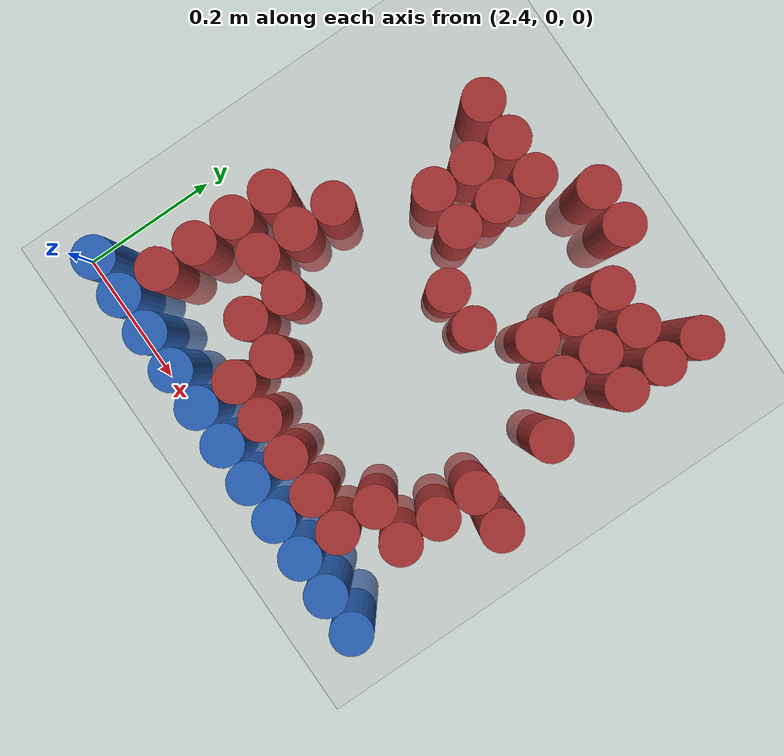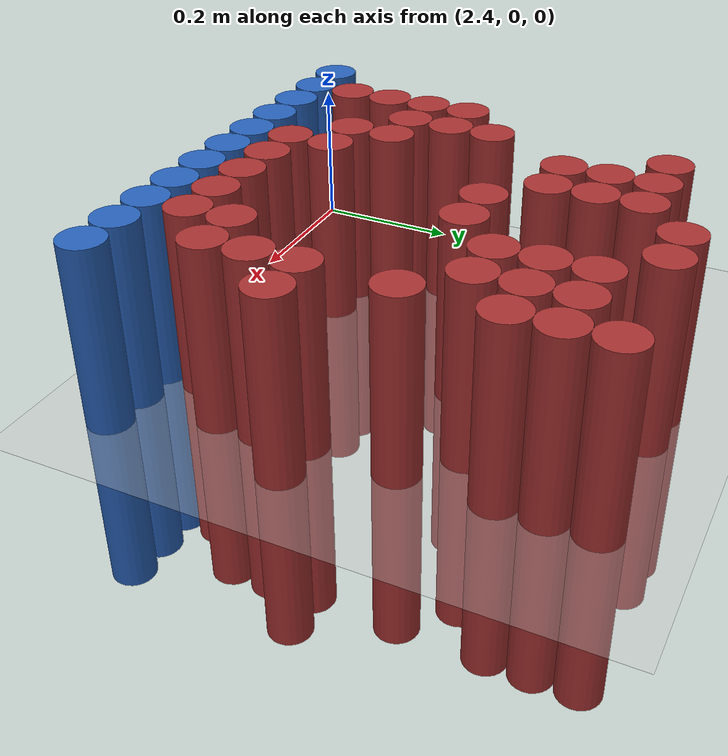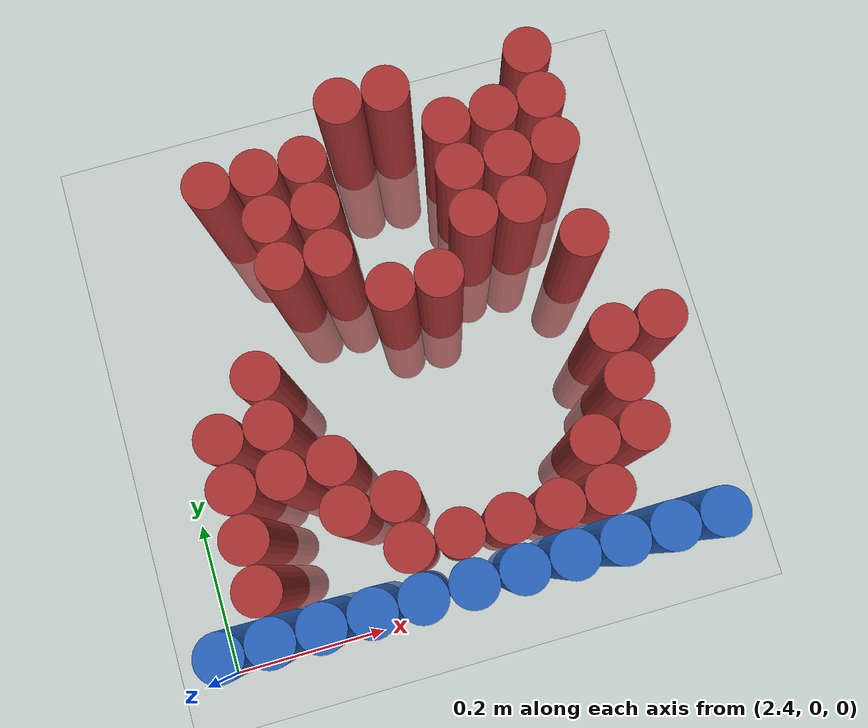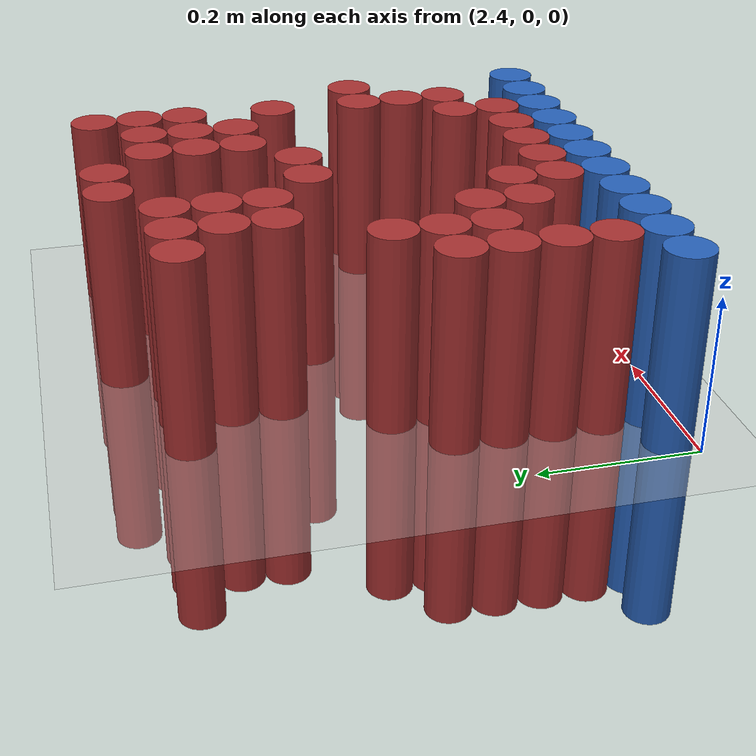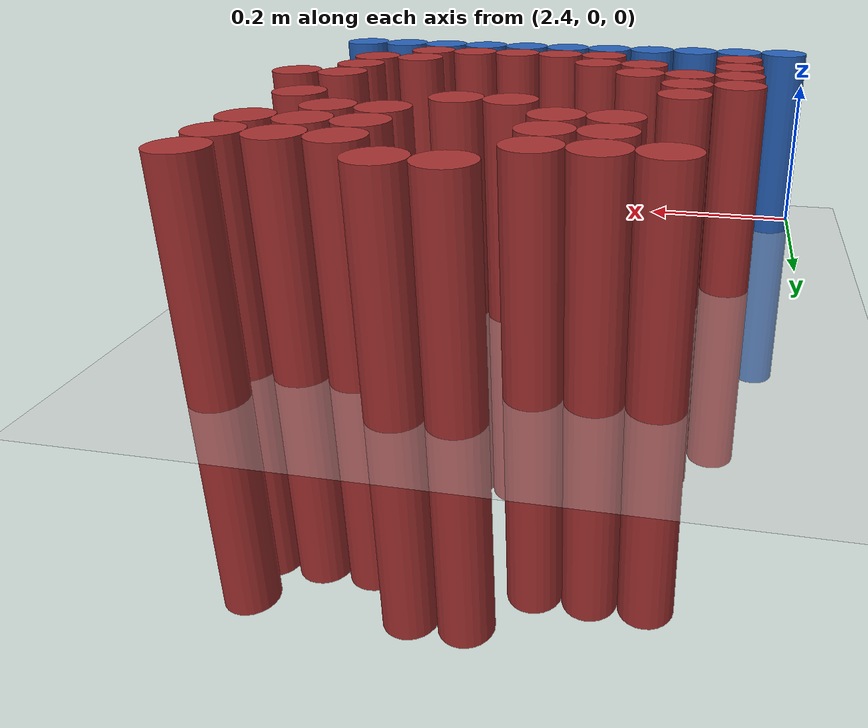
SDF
<sdf version="1.6">
 <world name="default">
  <model name="ground_plane">
   <static>1</static>
   <link name="link">
    <collision name="collision">
     <geometry><plane><normal>0 0 1</normal><size>100 100</size></plane></geometry>
     <surface><friction><ode><mu>100</mu><mu2>50</mu2></ode></friction></surface>
    </collision>
    <visual name="visual">
     <cast_shadows>0</cast_shadows>
     <geometry><plane><normal>0 0 1</normal><size>100 100</size></plane></geometry>
     <material>
      <script><uri>file://media/materials/scripts/gazebo.material</uri><name>Gazebo/Grey</name></script>
     </material>
    </visual>
   </link>
  </model>
  <model name="unit_cylinder_234">
   <static>1</static>
   <pose>2.730000 0.630000 0.000000 0.000000 0.000000 0.000000</pose>
   <link name="link">
    <inertial>
     <mass>1</mass>
     <inertia><ixx>0.145833</ixx><ixy>0</ixy><ixz>0</ixz><iyy>0.145833</iyy><iyz>0</iyz><izz>0.125</izz></inertia>
    </inertial>
    <collision name="collision">
     <geometry><cylinder><radius>0.030000</radius><length>0.5</length></cylinder></geometry>
    </collision>
    <visual name="visual">
     <geometry><cylinder><radius>0.030000</radius><length>0.5</length></cylinder></geometry>
     <material>
      <ambient>0.648000 0.192000 0.192000 1</ambient>
      <diffuse>0.648000 0.192000 0.192000 1</diffuse>
     </material>
     <material>
      <script><name>Gazebo/Grey</name><uri>file://media/materials/scripts/gazebo.material</uri></script>
     </material>
    </visual>
   </link>
  </model>
  <model name="unit_cylinder_235">
   <static>1</static>
   <pose>2.790000 0.630000 0.000000 0.000000 0.000000 0.000000</pose>
   <link name="link">
    <inertial>
     <mass>1</mass>
     <inertia><ixx>0.145833</ixx><ixy>0</ixy><ixz>0</ixz><iyy>0.145833</iyy><iyz>0</iyz><izz>0.125</izz></inertia>
    </inertial>
    <collision name="collision">
     <geometry><cylinder><radius>0.030000</radius><length>0.5</length></cylinder></geometry>
    </collision>
    <visual name="visual">
     <geometry><cylinder><radius>0.030000</radius><length>0.5</length></cylinder></geometry>
     <material>
      <ambient>0.648000 0.192000 0.192000 1</ambient>
      <diffuse>0.648000 0.192000 0.192000 1</diffuse>
     </material>
     <material>
      <script><name>Gazebo/Grey</name><uri>file://media/materials/scripts/gazebo.material</uri></script>
     </material>
    </visual>
   </link>
  </model>
  <model name="unit_cylinder_236">
   <static>1</static>
   <pose>2.970000 0.630000 0.000000 0.000000 0.000000 0.000000</pose>
   <link name="link">
    <inertial>
     <mass>1</mass>
     <inertia><ixx>0.145833</ixx><ixy>0</ixy><ixz>0</ixz><iyy>0.145833</iyy><iyz>0</iyz><izz>0.125</izz></inertia>
    </inertial>
    <collision name="collision">
     <geometry><cylinder><radius>0.030000</radius><length>0.5</length></cylinder></geometry>
    </collision>
    <visual name="visual">
     <geometry><cylinder><radius>0.030000</radius><length>0.5</length></cylinder></geometry>
     <material>
      <ambient>0.648000 0.192000 0.192000 1</ambient>
      <diffuse>0.648000 0.192000 0.192000 1</diffuse>
     </material>
     <material>
      <script><name>Gazebo/Grey</name><uri>file://media/materials/scripts/gazebo.material</uri></script>
     </material>
    </visual>
   </link>
  </model>
  <model name="unit_cylinder_242">
   <static>1</static>
   <pose>2.550000 0.570000 0.000000 0.000000 0.000000 0.000000</pose>
   <link name="link">
    <inertial>
     <mass>1</mass>
     <inertia><ixx>0.145833</ixx><ixy>0</ixy><ixz>0</ixz><iyy>0.145833</iyy><iyz>0</iyz><izz>0.125</izz></inertia>
    </inertial>
    <collision name="collision">
     <geometry><cylinder><radius>0.030000</radius><length>0.5</length></cylinder></geometry>
    </collision>
    <visual name="visual">
     <geometry><cylinder><radius>0.030000</radius><length>0.5</length></cylinder></geometry>
     <material>
      <ambient>0.648000 0.192000 0.192000 1</ambient>
      <diffuse>0.648000 0.192000 0.192000 1</diffuse>
     </material>
     <material>
      <script><name>Gazebo/Grey</name><uri>file://media/materials/scripts/gazebo.material</uri></script>
     </material>
    </visual>
   </link>
  </model>
  <model name="unit_cylinder_243">
   <static>1</static>
   <pose>2.610000 0.570000 0.000000 0.000000 0.000000 0.000000</pose>
   <link name="link">
    <inertial>
     <mass>1</mass>
     <inertia><ixx>0.145833</ixx><ixy>0</ixy><ixz>0</ixz><iyy>0.145833</iyy><iyz>0</iyz><izz>0.125</izz></inertia>
    </inertial>
    <collision name="collision">
     <geometry><cylinder><radius>0.030000</radius><length>0.5</length></cylinder></geometry>
    </collision>
    <visual name="visual">
     <geometry><cylinder><radius>0.030000</radius><length>0.5</length></cylinder></geometry>
     <material>
      <ambient>0.648000 0.192000 0.192000 1</ambient>
      <diffuse>0.648000 0.192000 0.192000 1</diffuse>
     </material>
     <material>
      <script><name>Gazebo/Grey</name><uri>file://media/materials/scripts/gazebo.material</uri></script>
     </material>
    </visual>
   </link>
  </model>
  <model name="unit_cylinder_244">
   <static>1</static>
   <pose>2.670000 0.570000 0.000000 0.000000 0.000000 0.000000</pose>
   <link name="link">
    <inertial>
     <mass>1</mass>
     <inertia><ixx>0.145833</ixx><ixy>0</ixy><ixz>0</ixz><iyy>0.145833</iyy><iyz>0</iyz><izz>0.125</izz></inertia>
    </inertial>
    <collision name="collision">
     <geometry><cylinder><radius>0.030000</radius><length>0.5</length></cylinder></geometry>
    </collision>
    <visual name="visual">
     <geometry><cylinder><radius>0.030000</radius><length>0.5</length></cylinder></geometry>
     <material>
      <ambient>0.648000 0.192000 0.192000 1</ambient>
      <diffuse>0.648000 0.192000 0.192000 1</diffuse>
     </material>
     <material>
      <script><name>Gazebo/Grey</name><uri>file://media/materials/scripts/gazebo.material</uri></script>
     </material>
    </visual>
   </link>
  </model>
  <model name="unit_cylinder_245">
   <static>1</static>
   <pose>2.850000 0.570000 0.000000 0.000000 0.000000 0.000000</pose>
   <link name="link">
    <inertial>
     <mass>1</mass>
     <inertia><ixx>0.145833</ixx><ixy>0</ixy><ixz>0</ixz><iyy>0.145833</iyy><iyz>0</iyz><izz>0.125</izz></inertia>
    </inertial>
    <collision name="collision">
     <geometry><cylinder><radius>0.030000</radius><length>0.5</length></cylinder></geometry>
    </collision>
    <visual name="visual">
     <geometry><cylinder><radius>0.030000</radius><length>0.5</length></cylinder></geometry>
     <material>
      <ambient>0.648000 0.192000 0.192000 1</ambient>
      <diffuse>0.648000 0.192000 0.192000 1</diffuse>
     </material>
     <material>
      <script><name>Gazebo/Grey</name><uri>file://media/materials/scripts/gazebo.material</uri></script>
     </material>
    </visual>
   </link>
  </model>
  <model name="unit_cylinder_246">
   <static>1</static>
   <pose>2.910000 0.570000 0.000000 0.000000 0.000000 0.000000</pose>
   <link name="link">
    <inertial>
     <mass>1</mass>
     <inertia><ixx>0.145833</ixx><ixy>0</ixy><ixz>0</ixz><iyy>0.145833</iyy><iyz>0</iyz><izz>0.125</izz></inertia>
    </inertial>
    <collision name="collision">
     <geometry><cylinder><radius>0.030000</radius><length>0.5</length></cylinder></geometry>
    </collision>
    <visual name="visual">
     <geometry><cylinder><radius>0.030000</radius><length>0.5</length></cylinder></geometry>
     <material>
      <ambient>0.648000 0.192000 0.192000 1</ambient>
      <diffuse>0.648000 0.192000 0.192000 1</diffuse>
     </material>
     <material>
      <script><name>Gazebo/Grey</name><uri>file://media/materials/scripts/gazebo.material</uri></script>
     </material>
    </visual>
   </link>
  </model>
  <model name="unit_cylinder_247">
   <static>1</static>
   <pose>2.970000 0.570000 0.000000 0.000000 0.000000 0.000000</pose>
   <link name="link">
    <inertial>
     <mass>1</mass>
     <inertia><ixx>0.145833</ixx><ixy>0</ixy><ixz>0</ixz><iyy>0.145833</iyy><iyz>0</iyz><izz>0.125</izz></inertia>
    </inertial>
    <collision name="collision">
     <geometry><cylinder><radius>0.030000</radius><length>0.5</length></cylinder></geometry>
    </collision>
    <visual name="visual">
     <geometry><cylinder><radius>0.030000</radius><length>0.5</length></cylinder></geometry>
     <material>
      <ambient>0.648000 0.192000 0.192000 1</ambient>
      <diffuse>0.648000 0.192000 0.192000 1</diffuse>
     </material>
     <material>
      <script><name>Gazebo/Grey</name><uri>file://media/materials/scripts/gazebo.material</uri></script>
     </material>
    </visual>
   </link>
  </model>
  <model name="unit_cylinder_256">
   <static>1</static>
   <pose>2.610000 0.510000 0.000000 0.000000 0.000000 0.000000</pose>
   <link name="link">
    <inertial>
     <mass>1</mass>
     <inertia><ixx>0.145833</ixx><ixy>0</ixy><ixz>0</ixz><iyy>0.145833</iyy><iyz>0</iyz><izz>0.125</izz></inertia>
    </inertial>
    <collision name="collision">
     <geometry><cylinder><radius>0.030000</radius><length>0.5</length></cylinder></geometry>
    </collision>
    <visual name="visual">
     <geometry><cylinder><radius>0.030000</radius><length>0.5</length></cylinder></geometry>
     <material>
      <ambient>0.648000 0.192000 0.192000 1</ambient>
      <diffuse>0.648000 0.192000 0.192000 1</diffuse>
     </material>
     <material>
      <script><name>Gazebo/Grey</name><uri>file://media/materials/scripts/gazebo.material</uri></script>
     </material>
    </visual>
   </link>
  </model>
  <model name="unit_cylinder_257">
   <static>1</static>
   <pose>2.670000 0.510000 0.000000 0.000000 0.000000 0.000000</pose>
   <link name="link">
    <inertial>
     <mass>1</mass>
     <inertia><ixx>0.145833</ixx><ixy>0</ixy><ixz>0</ixz><iyy>0.145833</iyy><iyz>0</iyz><izz>0.125</izz></inertia>
    </inertial>
    <collision name="collision">
     <geometry><cylinder><radius>0.030000</radius><length>0.5</length></cylinder></geometry>
    </collision>
    <visual name="visual">
     <geometry><cylinder><radius>0.030000</radius><length>0.5</length></cylinder></geometry>
     <material>
      <ambient>0.648000 0.192000 0.192000 1</ambient>
      <diffuse>0.648000 0.192000 0.192000 1</diffuse>
     </material>
     <material>
      <script><name>Gazebo/Grey</name><uri>file://media/materials/scripts/gazebo.material</uri></script>
     </material>
    </visual>
   </link>
  </model>
  <model name="unit_cylinder_258">
   <static>1</static>
   <pose>2.850000 0.510000 0.000000 0.000000 0.000000 0.000000</pose>
   <link name="link">
    <inertial>
     <mass>1</mass>
     <inertia><ixx>0.145833</ixx><ixy>0</ixy><ixz>0</ixz><iyy>0.145833</iyy><iyz>0</iyz><izz>0.125</izz></inertia>
    </inertial>
    <collision name="collision">
     <geometry><cylinder><radius>0.030000</radius><length>0.5</length></cylinder></geometry>
    </collision>
    <visual name="visual">
     <geometry><cylinder><radius>0.030000</radius><length>0.5</length></cylinder></geometry>
     <material>
      <ambient>0.648000 0.192000 0.192000 1</ambient>
      <diffuse>0.648000 0.192000 0.192000 1</diffuse>
     </material>
     <material>
      <script><name>Gazebo/Grey</name><uri>file://media/materials/scripts/gazebo.material</uri></script>
     </material>
    </visual>
   </link>
  </model>
  <model name="unit_cylinder_259">
   <static>1</static>
   <pose>2.910000 0.510000 0.000000 0.000000 0.000000 0.000000</pose>
   <link name="link">
    <inertial>
     <mass>1</mass>
     <inertia><ixx>0.145833</ixx><ixy>0</ixy><ixz>0</ixz><iyy>0.145833</iyy><iyz>0</iyz><izz>0.125</izz></inertia>
    </inertial>
    <collision name="collision">
     <geometry><cylinder><radius>0.030000</radius><length>0.5</length></cylinder></geometry>
    </collision>
    <visual name="visual">
     <geometry><cylinder><radius>0.030000</radius><length>0.5</length></cylinder></geometry>
     <material>
      <ambient>0.648000 0.192000 0.192000 1</ambient>
      <diffuse>0.648000 0.192000 0.192000 1</diffuse>
     </material>
     <material>
      <script><name>Gazebo/Grey</name><uri>file://media/materials/scripts/gazebo.material</uri></script>
     </material>
    </visual>
   </link>
  </model>
  <model name="unit_cylinder_260">
   <static>1</static>
   <pose>2.970000 0.510000 0.000000 0.000000 0.000000 0.000000</pose>
   <link name="link">
    <inertial>
     <mass>1</mass>
     <inertia><ixx>0.145833</ixx><ixy>0</ixy><ixz>0</ixz><iyy>0.145833</iyy><iyz>0</iyz><izz>0.125</izz></inertia>
    </inertial>
    <collision name="collision">
     <geometry><cylinder><radius>0.030000</radius><length>0.5</length></cylinder></geometry>
    </collision>
    <visual name="visual">
     <geometry><cylinder><radius>0.030000</radius><length>0.5</length></cylinder></geometry>
     <material>
      <ambient>0.648000 0.192000 0.192000 1</ambient>
      <diffuse>0.648000 0.192000 0.192000 1</diffuse>
     </material>
     <material>
      <script><name>Gazebo/Grey</name><uri>file://media/materials/scripts/gazebo.material</uri></script>
     </material>
    </visual>
   </link>
  </model>
  <model name="unit_cylinder_265">
   <static>1</static>
   <pose>2.610000 0.450000 0.000000 0.000000 0.000000 0.000000</pose>
   <link name="link">
    <inertial>
     <mass>1</mass>
     <inertia><ixx>0.145833</ixx><ixy>0</ixy><ixz>0</ixz><iyy>0.145833</iyy><iyz>0</iyz><izz>0.125</izz></inertia>
    </inertial>
    <collision name="collision">
     <geometry><cylinder><radius>0.030000</radius><length>0.5</length></cylinder></geometry>
    </collision>
    <visual name="visual">
     <geometry><cylinder><radius>0.030000</radius><length>0.5</length></cylinder></geometry>
     <material>
      <ambient>0.648000 0.192000 0.192000 1</ambient>
      <diffuse>0.648000 0.192000 0.192000 1</diffuse>
     </material>
     <material>
      <script><name>Gazebo/Grey</name><uri>file://media/materials/scripts/gazebo.material</uri></script>
     </material>
    </visual>
   </link>
  </model>
  <model name="unit_cylinder_266">
   <static>1</static>
   <pose>2.670000 0.450000 0.000000 0.000000 0.000000 0.000000</pose>
   <link name="link">
    <inertial>
     <mass>1</mass>
     <inertia><ixx>0.145833</ixx><ixy>0</ixy><ixz>0</ixz><iyy>0.145833</iyy><iyz>0</iyz><izz>0.125</izz></inertia>
    </inertial>
    <collision name="collision">
     <geometry><cylinder><radius>0.030000</radius><length>0.5</length></cylinder></geometry>
    </collision>
    <visual name="visual">
     <geometry><cylinder><radius>0.030000</radius><length>0.5</length></cylinder></geometry>
     <material>
      <ambient>0.648000 0.192000 0.192000 1</ambient>
      <diffuse>0.648000 0.192000 0.192000 1</diffuse>
     </material>
     <material>
      <script><name>Gazebo/Grey</name><uri>file://media/materials/scripts/gazebo.material</uri></script>
     </material>
    </visual>
   </link>
  </model>
  <model name="unit_cylinder_267">
   <static>1</static>
   <pose>2.850000 0.450000 0.000000 0.000000 0.000000 0.000000</pose>
   <link name="link">
    <inertial>
     <mass>1</mass>
     <inertia><ixx>0.145833</ixx><ixy>0</ixy><ixz>0</ixz><iyy>0.145833</iyy><iyz>0</iyz><izz>0.125</izz></inertia>
    </inertial>
    <collision name="collision">
     <geometry><cylinder><radius>0.030000</radius><length>0.5</length></cylinder></geometry>
    </collision>
    <visual name="visual">
     <geometry><cylinder><radius>0.030000</radius><length>0.5</length></cylinder></geometry>
     <material>
      <ambient>0.648000 0.192000 0.192000 1</ambient>
      <diffuse>0.648000 0.192000 0.192000 1</diffuse>
     </material>
     <material>
      <script><name>Gazebo/Grey</name><uri>file://media/materials/scripts/gazebo.material</uri></script>
     </material>
    </visual>
   </link>
  </model>
  <model name="unit_cylinder_268">
   <static>1</static>
   <pose>2.910000 0.450000 0.000000 0.000000 0.000000 0.000000</pose>
   <link name="link">
    <inertial>
     <mass>1</mass>
     <inertia><ixx>0.145833</ixx><ixy>0</ixy><ixz>0</ixz><iyy>0.145833</iyy><iyz>0</iyz><izz>0.125</izz></inertia>
    </inertial>
    <collision name="collision">
     <geometry><cylinder><radius>0.030000</radius><length>0.5</length></cylinder></geometry>
    </collision>
    <visual name="visual">
     <geometry><cylinder><radius>0.030000</radius><length>0.5</length></cylinder></geometry>
     <material>
      <ambient>0.648000 0.192000 0.192000 1</ambient>
      <diffuse>0.648000 0.192000 0.192000 1</diffuse>
     </material>
     <material>
      <script><name>Gazebo/Grey</name><uri>file://media/materials/scripts/gazebo.material</uri></script>
     </material>
    </visual>
   </link>
  </model>
  <model name="unit_cylinder_272">
   <static>1</static>
   <pose>2.730000 0.390000 0.000000 0.000000 0.000000 0.000000</pose>
   <link name="link">
    <inertial>
     <mass>1</mass>
     <inertia><ixx>0.145833</ixx><ixy>0</ixy><ixz>0</ixz><iyy>0.145833</iyy><iyz>0</iyz><izz>0.125</izz></inertia>
    </inertial>
    <collision name="collision">
     <geometry><cylinder><radius>0.030000</radius><length>0.5</length></cylinder></geometry>
    </collision>
    <visual name="visual">
     <geometry><cylinder><radius>0.030000</radius><length>0.5</length></cylinder></geometry>
     <material>
      <ambient>0.648000 0.192000 0.192000 1</ambient>
      <diffuse>0.648000 0.192000 0.192000 1</diffuse>
     </material>
     <material>
      <script><name>Gazebo/Grey</name><uri>file://media/materials/scripts/gazebo.material</uri></script>
     </material>
    </visual>
   </link>
  </model>
  <model name="unit_cylinder_273">
   <static>1</static>
   <pose>2.790000 0.390000 0.000000 0.000000 0.000000 0.000000</pose>
   <link name="link">
    <inertial>
     <mass>1</mass>
     <inertia><ixx>0.145833</ixx><ixy>0</ixy><ixz>0</ixz><iyy>0.145833</iyy><iyz>0</iyz><izz>0.125</izz></inertia>
    </inertial>
    <collision name="collision">
     <geometry><cylinder><radius>0.030000</radius><length>0.5</length></cylinder></geometry>
    </collision>
    <visual name="visual">
     <geometry><cylinder><radius>0.030000</radius><length>0.5</length></cylinder></geometry>
     <material>
      <ambient>0.648000 0.192000 0.192000 1</ambient>
      <diffuse>0.648000 0.192000 0.192000 1</diffuse>
     </material>
     <material>
      <script><name>Gazebo/Grey</name><uri>file://media/materials/scripts/gazebo.material</uri></script>
     </material>
    </visual>
   </link>
  </model>
  <model name="unit_cylinder_274">
   <static>1</static>
   <pose>2.970000 0.390000 0.000000 0.000000 0.000000 0.000000</pose>
   <link name="link">
    <inertial>
     <mass>1</mass>
     <inertia><ixx>0.145833</ixx><ixy>0</ixy><ixz>0</ixz><iyy>0.145833</iyy><iyz>0</iyz><izz>0.125</izz></inertia>
    </inertial>
    <collision name="collision">
     <geometry><cylinder><radius>0.030000</radius><length>0.5</length></cylinder></geometry>
    </collision>
    <visual name="visual">
     <geometry><cylinder><radius>0.030000</radius><length>0.5</length></cylinder></geometry>
     <material>
      <ambient>0.648000 0.192000 0.192000 1</ambient>
      <diffuse>0.648000 0.192000 0.192000 1</diffuse>
     </material>
     <material>
      <script><name>Gazebo/Grey</name><uri>file://media/materials/scripts/gazebo.material</uri></script>
     </material>
    </visual>
   </link>
  </model>
  <model name="unit_cylinder_280">
   <static>1</static>
   <pose>2.550000 0.330000 0.000000 0.000000 0.000000 0.000000</pose>
   <link name="link">
    <inertial>
     <mass>1</mass>
     <inertia><ixx>0.145833</ixx><ixy>0</ixy><ixz>0</ixz><iyy>0.145833</iyy><iyz>0</iyz><izz>0.125</izz></inertia>
    </inertial>
    <collision name="collision">
     <geometry><cylinder><radius>0.030000</radius><length>0.5</length></cylinder></geometry>
    </collision>
    <visual name="visual">
     <geometry><cylinder><radius>0.030000</radius><length>0.5</length></cylinder></geometry>
     <material>
      <ambient>0.648000 0.192000 0.192000 1</ambient>
      <diffuse>0.648000 0.192000 0.192000 1</diffuse>
     </material>
     <material>
      <script><name>Gazebo/Grey</name><uri>file://media/materials/scripts/gazebo.material</uri></script>
     </material>
    </visual>
   </link>
  </model>
  <model name="unit_cylinder_288">
   <static>1</static>
   <pose>2.490000 0.270000 0.000000 0.000000 0.000000 0.000000</pose>
   <link name="link">
    <inertial>
     <mass>1</mass>
     <inertia><ixx>0.145833</ixx><ixy>0</ixy><ixz>0</ixz><iyy>0.145833</iyy><iyz>0</iyz><izz>0.125</izz></inertia>
    </inertial>
    <collision name="collision">
     <geometry><cylinder><radius>0.030000</radius><length>0.5</length></cylinder></geometry>
    </collision>
    <visual name="visual">
     <geometry><cylinder><radius>0.030000</radius><length>0.5</length></cylinder></geometry>
     <material>
      <ambient>0.648000 0.192000 0.192000 1</ambient>
      <diffuse>0.648000 0.192000 0.192000 1</diffuse>
     </material>
     <material>
      <script><name>Gazebo/Grey</name><uri>file://media/materials/scripts/gazebo.material</uri></script>
     </material>
    </visual>
   </link>
  </model>
  <model name="unit_cylinder_289">
   <static>1</static>
   <pose>2.550000 0.270000 0.000000 0.000000 0.000000 0.000000</pose>
   <link name="link">
    <inertial>
     <mass>1</mass>
     <inertia><ixx>0.145833</ixx><ixy>0</ixy><ixz>0</ixz><iyy>0.145833</iyy><iyz>0</iyz><izz>0.125</izz></inertia>
    </inertial>
    <collision name="collision">
     <geometry><cylinder><radius>0.030000</radius><length>0.5</length></cylinder></geometry>
    </collision>
    <visual name="visual">
     <geometry><cylinder><radius>0.030000</radius><length>0.5</length></cylinder></geometry>
     <material>
      <ambient>0.648000 0.192000 0.192000 1</ambient>
      <diffuse>0.648000 0.192000 0.192000 1</diffuse>
     </material>
     <material>
      <script><name>Gazebo/Grey</name><uri>file://media/materials/scripts/gazebo.material</uri></script>
     </material>
    </visual>
   </link>
  </model>
  <model name="unit_cylinder_290">
   <static>1</static>
   <pose>2.970000 0.270000 0.000000 0.000000 0.000000 0.000000</pose>
   <link name="link">
    <inertial>
     <mass>1</mass>
     <inertia><ixx>0.145833</ixx><ixy>0</ixy><ixz>0</ixz><iyy>0.145833</iyy><iyz>0</iyz><izz>0.125</izz></inertia>
    </inertial>
    <collision name="collision">
     <geometry><cylinder><radius>0.030000</radius><length>0.5</length></cylinder></geometry>
    </collision>
    <visual name="visual">
     <geometry><cylinder><radius>0.030000</radius><length>0.5</length></cylinder></geometry>
     <material>
      <ambient>0.648000 0.192000 0.192000 1</ambient>
      <diffuse>0.648000 0.192000 0.192000 1</diffuse>
     </material>
     <material>
      <script><name>Gazebo/Grey</name><uri>file://media/materials/scripts/gazebo.material</uri></script>
     </material>
    </visual>
   </link>
  </model>
  <model name="unit_cylinder_291">
   <static>1</static>
   <pose>3.030000 0.270000 0.000000 0.000000 0.000000 0.000000</pose>
   <link name="link">
    <inertial>
     <mass>1</mass>
     <inertia><ixx>0.145833</ixx><ixy>0</ixy><ixz>0</ixz><iyy>0.145833</iyy><iyz>0</iyz><izz>0.125</izz></inertia>
    </inertial>
    <collision name="collision">
     <geometry><cylinder><radius>0.030000</radius><length>0.5</length></cylinder></geometry>
    </collision>
    <visual name="visual">
     <geometry><cylinder><radius>0.030000</radius><length>0.5</length></cylinder></geometry>
     <material>
      <ambient>0.648000 0.192000 0.192000 1</ambient>
      <diffuse>0.648000 0.192000 0.192000 1</diffuse>
     </material>
     <material>
      <script><name>Gazebo/Grey</name><uri>file://media/materials/scripts/gazebo.material</uri></script>
     </material>
    </visual>
   </link>
  </model>
  <model name="unit_cylinder_297">
   <static>1</static>
   <pose>2.490000 0.210000 0.000000 0.000000 0.000000 0.000000</pose>
   <link name="link">
    <inertial>
     <mass>1</mass>
     <inertia><ixx>0.145833</ixx><ixy>0</ixy><ixz>0</ixz><iyy>0.145833</iyy><iyz>0</iyz><izz>0.125</izz></inertia>
    </inertial>
    <collision name="collision">
     <geometry><cylinder><radius>0.030000</radius><length>0.5</length></cylinder></geometry>
    </collision>
    <visual name="visual">
     <geometry><cylinder><radius>0.030000</radius><length>0.5</length></cylinder></geometry>
     <material>
      <ambient>0.648000 0.192000 0.192000 1</ambient>
      <diffuse>0.648000 0.192000 0.192000 1</diffuse>
     </material>
     <material>
      <script><name>Gazebo/Grey</name><uri>file://media/materials/scripts/gazebo.material</uri></script>
     </material>
    </visual>
   </link>
  </model>
  <model name="unit_cylinder_298">
   <static>1</static>
   <pose>2.550000 0.210000 0.000000 0.000000 0.000000 0.000000</pose>
   <link name="link">
    <inertial>
     <mass>1</mass>
     <inertia><ixx>0.145833</ixx><ixy>0</ixy><ixz>0</ixz><iyy>0.145833</iyy><iyz>0</iyz><izz>0.125</izz></inertia>
    </inertial>
    <collision name="collision">
     <geometry><cylinder><radius>0.030000</radius><length>0.5</length></cylinder></geometry>
    </collision>
    <visual name="visual">
     <geometry><cylinder><radius>0.030000</radius><length>0.5</length></cylinder></geometry>
     <material>
      <ambient>0.648000 0.192000 0.192000 1</ambient>
      <diffuse>0.648000 0.192000 0.192000 1</diffuse>
     </material>
     <material>
      <script><name>Gazebo/Grey</name><uri>file://media/materials/scripts/gazebo.material</uri></script>
     </material>
    </visual>
   </link>
  </model>
  <model name="unit_cylinder_299">
   <static>1</static>
   <pose>2.610000 0.210000 0.000000 0.000000 0.000000 0.000000</pose>
   <link name="link">
    <inertial>
     <mass>1</mass>
     <inertia><ixx>0.145833</ixx><ixy>0</ixy><ixz>0</ixz><iyy>0.145833</iyy><iyz>0</iyz><izz>0.125</izz></inertia>
    </inertial>
    <collision name="collision">
     <geometry><cylinder><radius>0.030000</radius><length>0.5</length></cylinder></geometry>
    </collision>
    <visual name="visual">
     <geometry><cylinder><radius>0.030000</radius><length>0.5</length></cylinder></geometry>
     <material>
      <ambient>0.648000 0.192000 0.192000 1</ambient>
      <diffuse>0.648000 0.192000 0.192000 1</diffuse>
     </material>
     <material>
      <script><name>Gazebo/Grey</name><uri>file://media/materials/scripts/gazebo.material</uri></script>
     </material>
    </visual>
   </link>
  </model>
  <model name="unit_cylinder_300">
   <static>1</static>
   <pose>2.970000 0.210000 0.000000 0.000000 0.000000 0.000000</pose>
   <link name="link">
    <inertial>
     <mass>1</mass>
     <inertia><ixx>0.145833</ixx><ixy>0</ixy><ixz>0</ixz><iyy>0.145833</iyy><iyz>0</iyz><izz>0.125</izz></inertia>
    </inertial>
    <collision name="collision">
     <geometry><cylinder><radius>0.030000</radius><length>0.5</length></cylinder></geometry>
    </collision>
    <visual name="visual">
     <geometry><cylinder><radius>0.030000</radius><length>0.5</length></cylinder></geometry>
     <material>
      <ambient>0.648000 0.192000 0.192000 1</ambient>
      <diffuse>0.648000 0.192000 0.192000 1</diffuse>
     </material>
     <material>
      <script><name>Gazebo/Grey</name><uri>file://media/materials/scripts/gazebo.material</uri></script>
     </material>
    </visual>
   </link>
  </model>
  <model name="unit_cylinder_312">
   <static>1</static>
   <pose>2.490000 0.150000 0.000000 0.000000 0.000000 0.000000</pose>
   <link name="link">
    <inertial>
     <mass>1</mass>
     <inertia><ixx>0.145833</ixx><ixy>0</ixy><ixz>0</ixz><iyy>0.145833</iyy><iyz>0</iyz><izz>0.125</izz></inertia>
    </inertial>
    <collision name="collision">
     <geometry><cylinder><radius>0.030000</radius><length>0.5</length></cylinder></geometry>
    </collision>
    <visual name="visual">
     <geometry><cylinder><radius>0.030000</radius><length>0.5</length></cylinder></geometry>
     <material>
      <ambient>0.648000 0.192000 0.192000 1</ambient>
      <diffuse>0.648000 0.192000 0.192000 1</diffuse>
     </material>
     <material>
      <script><name>Gazebo/Grey</name><uri>file://media/materials/scripts/gazebo.material</uri></script>
     </material>
    </visual>
   </link>
  </model>
  <model name="unit_cylinder_313">
   <static>1</static>
   <pose>2.610000 0.150000 0.000000 0.000000 0.000000 0.000000</pose>
   <link name="link">
    <inertial>
     <mass>1</mass>
     <inertia><ixx>0.145833</ixx><ixy>0</ixy><ixz>0</ixz><iyy>0.145833</iyy><iyz>0</iyz><izz>0.125</izz></inertia>
    </inertial>
    <collision name="collision">
     <geometry><cylinder><radius>0.030000</radius><length>0.5</length></cylinder></geometry>
    </collision>
    <visual name="visual">
     <geometry><cylinder><radius>0.030000</radius><length>0.5</length></cylinder></geometry>
     <material>
      <ambient>0.648000 0.192000 0.192000 1</ambient>
      <diffuse>0.648000 0.192000 0.192000 1</diffuse>
     </material>
     <material>
      <script><name>Gazebo/Grey</name><uri>file://media/materials/scripts/gazebo.material</uri></script>
     </material>
    </visual>
   </link>
  </model>
  <model name="unit_cylinder_314">
   <static>1</static>
   <pose>2.670000 0.150000 0.000000 0.000000 0.000000 0.000000</pose>
   <link name="link">
    <inertial>
     <mass>1</mass>
     <inertia><ixx>0.145833</ixx><ixy>0</ixy><ixz>0</ixz><iyy>0.145833</iyy><iyz>0</iyz><izz>0.125</izz></inertia>
    </inertial>
    <collision name="collision">
     <geometry><cylinder><radius>0.030000</radius><length>0.5</length></cylinder></geometry>
    </collision>
    <visual name="visual">
     <geometry><cylinder><radius>0.030000</radius><length>0.5</length></cylinder></geometry>
     <material>
      <ambient>0.648000 0.192000 0.192000 1</ambient>
      <diffuse>0.648000 0.192000 0.192000 1</diffuse>
     </material>
     <material>
      <script><name>Gazebo/Grey</name><uri>file://media/materials/scripts/gazebo.material</uri></script>
     </material>
    </visual>
   </link>
  </model>
  <model name="unit_cylinder_315">
   <static>1</static>
   <pose>2.910000 0.150000 0.000000 0.000000 0.000000 0.000000</pose>
   <link name="link">
    <inertial>
     <mass>1</mass>
     <inertia><ixx>0.145833</ixx><ixy>0</ixy><ixz>0</ixz><iyy>0.145833</iyy><iyz>0</iyz><izz>0.125</izz></inertia>
    </inertial>
    <collision name="collision">
     <geometry><cylinder><radius>0.030000</radius><length>0.5</length></cylinder></geometry>
    </collision>
    <visual name="visual">
     <geometry><cylinder><radius>0.030000</radius><length>0.5</length></cylinder></geometry>
     <material>
      <ambient>0.648000 0.192000 0.192000 1</ambient>
      <diffuse>0.648000 0.192000 0.192000 1</diffuse>
     </material>
     <material>
      <script><name>Gazebo/Grey</name><uri>file://media/materials/scripts/gazebo.material</uri></script>
     </material>
    </visual>
   </link>
  </model>
  <model name="unit_cylinder_316">
   <static>1</static>
   <pose>2.970000 0.150000 0.000000 0.000000 0.000000 0.000000</pose>
   <link name="link">
    <inertial>
     <mass>1</mass>
     <inertia><ixx>0.145833</ixx><ixy>0</ixy><ixz>0</ixz><iyy>0.145833</iyy><iyz>0</iyz><izz>0.125</izz></inertia>
    </inertial>
    <collision name="collision">
     <geometry><cylinder><radius>0.030000</radius><length>0.5</length></cylinder></geometry>
    </collision>
    <visual name="visual">
     <geometry><cylinder><radius>0.030000</radius><length>0.5</length></cylinder></geometry>
     <material>
      <ambient>0.648000 0.192000 0.192000 1</ambient>
      <diffuse>0.648000 0.192000 0.192000 1</diffuse>
     </material>
     <material>
      <script><name>Gazebo/Grey</name><uri>file://media/materials/scripts/gazebo.material</uri></script>
     </material>
    </visual>
   </link>
  </model>
  <model name="unit_cylinder_326">
   <static>1</static>
   <pose>2.490000 0.090000 0.000000 0.000000 0.000000 0.000000</pose>
   <link name="link">
    <inertial>
     <mass>1</mass>
     <inertia><ixx>0.145833</ixx><ixy>0</ixy><ixz>0</ixz><iyy>0.145833</iyy><iyz>0</iyz><izz>0.125</izz></inertia>
    </inertial>
    <collision name="collision">
     <geometry><cylinder><radius>0.030000</radius><length>0.5</length></cylinder></geometry>
    </collision>
    <visual name="visual">
     <geometry><cylinder><radius>0.030000</radius><length>0.5</length></cylinder></geometry>
     <material>
      <ambient>0.648000 0.192000 0.192000 1</ambient>
      <diffuse>0.648000 0.192000 0.192000 1</diffuse>
     </material>
     <material>
      <script><name>Gazebo/Grey</name><uri>file://media/materials/scripts/gazebo.material</uri></script>
     </material>
    </visual>
   </link>
  </model>
  <model name="unit_cylinder_327">
   <static>1</static>
   <pose>2.670000 0.090000 0.000000 0.000000 0.000000 0.000000</pose>
   <link name="link">
    <inertial>
     <mass>1</mass>
     <inertia><ixx>0.145833</ixx><ixy>0</ixy><ixz>0</ixz><iyy>0.145833</iyy><iyz>0</iyz><izz>0.125</izz></inertia>
    </inertial>
    <collision name="collision">
     <geometry><cylinder><radius>0.030000</radius><length>0.5</length></cylinder></geometry>
    </collision>
    <visual name="visual">
     <geometry><cylinder><radius>0.030000</radius><length>0.5</length></cylinder></geometry>
     <material>
      <ambient>0.648000 0.192000 0.192000 1</ambient>
      <diffuse>0.648000 0.192000 0.192000 1</diffuse>
     </material>
     <material>
      <script><name>Gazebo/Grey</name><uri>file://media/materials/scripts/gazebo.material</uri></script>
     </material>
    </visual>
   </link>
  </model>
  <model name="unit_cylinder_328">
   <static>1</static>
   <pose>2.730000 0.090000 0.000000 0.000000 0.000000 0.000000</pose>
   <link name="link">
    <inertial>
     <mass>1</mass>
     <inertia><ixx>0.145833</ixx><ixy>0</ixy><ixz>0</ixz><iyy>0.145833</iyy><iyz>0</iyz><izz>0.125</izz></inertia>
    </inertial>
    <collision name="collision">
     <geometry><cylinder><radius>0.030000</radius><length>0.5</length></cylinder></geometry>
    </collision>
    <visual name="visual">
     <geometry><cylinder><radius>0.030000</radius><length>0.5</length></cylinder></geometry>
     <material>
      <ambient>0.648000 0.192000 0.192000 1</ambient>
      <diffuse>0.648000 0.192000 0.192000 1</diffuse>
     </material>
     <material>
      <script><name>Gazebo/Grey</name><uri>file://media/materials/scripts/gazebo.material</uri></script>
     </material>
    </visual>
   </link>
  </model>
  <model name="unit_cylinder_329">
   <static>1</static>
   <pose>2.790000 0.090000 0.000000 0.000000 0.000000 0.000000</pose>
   <link name="link">
    <inertial>
     <mass>1</mass>
     <inertia><ixx>0.145833</ixx><ixy>0</ixy><ixz>0</ixz><iyy>0.145833</iyy><iyz>0</iyz><izz>0.125</izz></inertia>
    </inertial>
    <collision name="collision">
     <geometry><cylinder><radius>0.030000</radius><length>0.5</length></cylinder></geometry>
    </collision>
    <visual name="visual">
     <geometry><cylinder><radius>0.030000</radius><length>0.5</length></cylinder></geometry>
     <material>
      <ambient>0.648000 0.192000 0.192000 1</ambient>
      <diffuse>0.648000 0.192000 0.192000 1</diffuse>
     </material>
     <material>
      <script><name>Gazebo/Grey</name><uri>file://media/materials/scripts/gazebo.material</uri></script>
     </material>
    </visual>
   </link>
  </model>
  <model name="unit_cylinder_330">
   <static>1</static>
   <pose>2.850000 0.090000 0.000000 0.000000 0.000000 0.000000</pose>
   <link name="link">
    <inertial>
     <mass>1</mass>
     <inertia><ixx>0.145833</ixx><ixy>0</ixy><ixz>0</ixz><iyy>0.145833</iyy><iyz>0</iyz><izz>0.125</izz></inertia>
    </inertial>
    <collision name="collision">
     <geometry><cylinder><radius>0.030000</radius><length>0.5</length></cylinder></geometry>
    </collision>
    <visual name="visual">
     <geometry><cylinder><radius>0.030000</radius><length>0.5</length></cylinder></geometry>
     <material>
      <ambient>0.648000 0.192000 0.192000 1</ambient>
      <diffuse>0.648000 0.192000 0.192000 1</diffuse>
     </material>
     <material>
      <script><name>Gazebo/Grey</name><uri>file://media/materials/scripts/gazebo.material</uri></script>
     </material>
    </visual>
   </link>
  </model>
  <model name="unit_cylinder_331">
   <static>1</static>
   <pose>2.910000 0.090000 0.000000 0.000000 0.000000 0.000000</pose>
   <link name="link">
    <inertial>
     <mass>1</mass>
     <inertia><ixx>0.145833</ixx><ixy>0</ixy><ixz>0</ixz><iyy>0.145833</iyy><iyz>0</iyz><izz>0.125</izz></inertia>
    </inertial>
    <collision name="collision">
     <geometry><cylinder><radius>0.030000</radius><length>0.5</length></cylinder></geometry>
    </collision>
    <visual name="visual">
     <geometry><cylinder><radius>0.030000</radius><length>0.5</length></cylinder></geometry>
     <material>
      <ambient>0.648000 0.192000 0.192000 1</ambient>
      <diffuse>0.648000 0.192000 0.192000 1</diffuse>
     </material>
     <material>
      <script><name>Gazebo/Grey</name><uri>file://media/materials/scripts/gazebo.material</uri></script>
     </material>
    </visual>
   </link>
  </model>
  <model name="unit_cylinder_340">
   <static>1</static>
   <pose>2.430000 0.030000 0.000000 0.000000 0.000000 0.000000</pose>
   <link name="link">
    <inertial>
     <mass>1</mass>
     <inertia><ixx>0.145833</ixx><ixy>0</ixy><ixz>0</ixz><iyy>0.145833</iyy><iyz>0</iyz><izz>0.125</izz></inertia>
    </inertial>
    <collision name="collision">
     <geometry><cylinder><radius>0.030000</radius><length>0.5</length></cylinder></geometry>
    </collision>
    <visual name="visual">
     <geometry><cylinder><radius>0.030000</radius><length>0.5</length></cylinder></geometry>
     <material>
      <ambient>0.152000 0.379000 0.720000 1</ambient>
      <diffuse>0.152000 0.379000 0.720000 1</diffuse>
     </material>
     <material>
      <script><name>Gazebo/Grey</name><uri>file://media/materials/scripts/gazebo.material</uri></script>
     </material>
    </visual>
   </link>
  </model>
  <model name="unit_cylinder_341">
   <static>1</static>
   <pose>2.490000 0.030000 0.000000 0.000000 0.000000 0.000000</pose>
   <link name="link">
    <inertial>
     <mass>1</mass>
     <inertia><ixx>0.145833</ixx><ixy>0</ixy><ixz>0</ixz><iyy>0.145833</iyy><iyz>0</iyz><izz>0.125</izz></inertia>
    </inertial>
    <collision name="collision">
     <geometry><cylinder><radius>0.030000</radius><length>0.5</length></cylinder></geometry>
    </collision>
    <visual name="visual">
     <geometry><cylinder><radius>0.030000</radius><length>0.5</length></cylinder></geometry>
     <material>
      <ambient>0.152000 0.379000 0.720000 1</ambient>
      <diffuse>0.152000 0.379000 0.720000 1</diffuse>
     </material>
     <material>
      <script><name>Gazebo/Grey</name><uri>file://media/materials/scripts/gazebo.material</uri></script>
     </material>
    </visual>
   </link>
  </model>
  <model name="unit_cylinder_342">
   <static>1</static>
   <pose>2.550000 0.030000 0.000000 0.000000 0.000000 0.000000</pose>
   <link name="link">
    <inertial>
     <mass>1</mass>
     <inertia><ixx>0.145833</ixx><ixy>0</ixy><ixz>0</ixz><iyy>0.145833</iyy><iyz>0</iyz><izz>0.125</izz></inertia>
    </inertial>
    <collision name="collision">
     <geometry><cylinder><radius>0.030000</radius><length>0.5</length></cylinder></geometry>
    </collision>
    <visual name="visual">
     <geometry><cylinder><radius>0.030000</radius><length>0.5</length></cylinder></geometry>
     <material>
      <ambient>0.152000 0.379000 0.720000 1</ambient>
      <diffuse>0.152000 0.379000 0.720000 1</diffuse>
     </material>
     <material>
      <script><name>Gazebo/Grey</name><uri>file://media/materials/scripts/gazebo.material</uri></script>
     </material>
    </visual>
   </link>
  </model>
  <model name="unit_cylinder_343">
   <static>1</static>
   <pose>2.610000 0.030000 0.000000 0.000000 0.000000 0.000000</pose>
   <link name="link">
    <inertial>
     <mass>1</mass>
     <inertia><ixx>0.145833</ixx><ixy>0</ixy><ixz>0</ixz><iyy>0.145833</iyy><iyz>0</iyz><izz>0.125</izz></inertia>
    </inertial>
    <collision name="collision">
     <geometry><cylinder><radius>0.030000</radius><length>0.5</length></cylinder></geometry>
    </collision>
    <visual name="visual">
     <geometry><cylinder><radius>0.030000</radius><length>0.5</length></cylinder></geometry>
     <material>
      <ambient>0.152000 0.379000 0.720000 1</ambient>
      <diffuse>0.152000 0.379000 0.720000 1</diffuse>
     </material>
     <material>
      <script><name>Gazebo/Grey</name><uri>file://media/materials/scripts/gazebo.material</uri></script>
     </material>
    </visual>
   </link>
  </model>
  <model name="unit_cylinder_344">
   <static>1</static>
   <pose>2.670000 0.030000 0.000000 0.000000 0.000000 0.000000</pose>
   <link name="link">
    <inertial>
     <mass>1</mass>
     <inertia><ixx>0.145833</ixx><ixy>0</ixy><ixz>0</ixz><iyy>0.145833</iyy><iyz>0</iyz><izz>0.125</izz></inertia>
    </inertial>
    <collision name="collision">
     <geometry><cylinder><radius>0.030000</radius><length>0.5</length></cylinder></geometry>
    </collision>
    <visual name="visual">
     <geometry><cylinder><radius>0.030000</radius><length>0.5</length></cylinder></geometry>
     <material>
      <ambient>0.152000 0.379000 0.720000 1</ambient>
      <diffuse>0.152000 0.379000 0.720000 1</diffuse>
     </material>
     <material>
      <script><name>Gazebo/Grey</name><uri>file://media/materials/scripts/gazebo.material</uri></script>
     </material>
    </visual>
   </link>
  </model>
  <model name="unit_cylinder_345">
   <static>1</static>
   <pose>2.730000 0.030000 0.000000 0.000000 0.000000 0.000000</pose>
   <link name="link">
    <inertial>
     <mass>1</mass>
     <inertia><ixx>0.145833</ixx><ixy>0</ixy><ixz>0</ixz><iyy>0.145833</iyy><iyz>0</iyz><izz>0.125</izz></inertia>
    </inertial>
    <collision name="collision">
     <geometry><cylinder><radius>0.030000</radius><length>0.5</length></cylinder></geometry>
    </collision>
    <visual name="visual">
     <geometry><cylinder><radius>0.030000</radius><length>0.5</length></cylinder></geometry>
     <material>
      <ambient>0.152000 0.379000 0.720000 1</ambient>
      <diffuse>0.152000 0.379000 0.720000 1</diffuse>
     </material>
     <material>
      <script><name>Gazebo/Grey</name><uri>file://media/materials/scripts/gazebo.material</uri></script>
     </material>
    </visual>
   </link>
  </model>
  <model name="unit_cylinder_346">
   <static>1</static>
   <pose>2.790000 0.030000 0.000000 0.000000 0.000000 0.000000</pose>
   <link name="link">
    <inertial>
     <mass>1</mass>
     <inertia><ixx>0.145833</ixx><ixy>0</ixy><ixz>0</ixz><iyy>0.145833</iyy><iyz>0</iyz><izz>0.125</izz></inertia>
    </inertial>
    <collision name="collision">
     <geometry><cylinder><radius>0.030000</radius><length>0.5</length></cylinder></geometry>
    </collision>
    <visual name="visual">
     <geometry><cylinder><radius>0.030000</radius><length>0.5</length></cylinder></geometry>
     <material>
      <ambient>0.152000 0.379000 0.720000 1</ambient>
      <diffuse>0.152000 0.379000 0.720000 1</diffuse>
     </material>
     <material>
      <script><name>Gazebo/Grey</name><uri>file://media/materials/scripts/gazebo.material</uri></script>
     </material>
    </visual>
   </link>
  </model>
  <model name="unit_cylinder_347">
   <static>1</static>
   <pose>2.850000 0.030000 0.000000 0.000000 0.000000 0.000000</pose>
   <link name="link">
    <inertial>
     <mass>1</mass>
     <inertia><ixx>0.145833</ixx><ixy>0</ixy><ixz>0</ixz><iyy>0.145833</iyy><iyz>0</iyz><izz>0.125</izz></inertia>
    </inertial>
    <collision name="collision">
     <geometry><cylinder><radius>0.030000</radius><length>0.5</length></cylinder></geometry>
    </collision>
    <visual name="visual">
     <geometry><cylinder><radius>0.030000</radius><length>0.5</length></cylinder></geometry>
     <material>
      <ambient>0.152000 0.379000 0.720000 1</ambient>
      <diffuse>0.152000 0.379000 0.720000 1</diffuse>
     </material>
     <material>
      <script><name>Gazebo/Grey</name><uri>file://media/materials/scripts/gazebo.material</uri></script>
     </material>
    </visual>
   </link>
  </model>
  <model name="unit_cylinder_348">
   <static>1</static>
   <pose>2.910000 0.030000 0.000000 0.000000 0.000000 0.000000</pose>
   <link name="link">
    <inertial>
     <mass>1</mass>
     <inertia><ixx>0.145833</ixx><ixy>0</ixy><ixz>0</ixz><iyy>0.145833</iyy><iyz>0</iyz><izz>0.125</izz></inertia>
    </inertial>
    <collision name="collision">
     <geometry><cylinder><radius>0.030000</radius><length>0.5</length></cylinder></geometry>
    </collision>
    <visual name="visual">
     <geometry><cylinder><radius>0.030000</radius><length>0.5</length></cylinder></geometry>
     <material>
      <ambient>0.152000 0.379000 0.720000 1</ambient>
      <diffuse>0.152000 0.379000 0.720000 1</diffuse>
     </material>
     <material>
      <script><name>Gazebo/Grey</name><uri>file://media/materials/scripts/gazebo.material</uri></script>
     </material>
    </visual>
   </link>
  </model>
  <model name="unit_cylinder_349">
   <static>1</static>
   <pose>2.970000 0.030000 0.000000 0.000000 0.000000 0.000000</pose>
   <link name="link">
    <inertial>
     <mass>1</mass>
     <inertia><ixx>0.145833</ixx><ixy>0</ixy><ixz>0</ixz><iyy>0.145833</iyy><iyz>0</iyz><izz>0.125</izz></inertia>
    </inertial>
    <collision name="collision">
     <geometry><cylinder><radius>0.030000</radius><length>0.5</length></cylinder></geometry>
    </collision>
    <visual name="visual">
     <geometry><cylinder><radius>0.030000</radius><length>0.5</length></cylinder></geometry>
     <material>
      <ambient>0.152000 0.379000 0.720000 1</ambient>
      <diffuse>0.152000 0.379000 0.720000 1</diffuse>
     </material>
     <material>
      <script><name>Gazebo/Grey</name><uri>file://media/materials/scripts/gazebo.material</uri></script>
     </material>
    </visual>
   </link>
  </model>
  <model name="unit_cylinder_350">
   <static>1</static>
   <pose>3.030000 0.030000 0.000000 0.000000 0.000000 0.000000</pose>
   <link name="link">
    <inertial>
     <mass>1</mass>
     <inertia><ixx>0.145833</ixx><ixy>0</ixy><ixz>0</ixz><iyy>0.145833</iyy><iyz>0</iyz><izz>0.125</izz></inertia>
    </inertial>
    <collision name="collision">
     <geometry><cylinder><radius>0.030000</radius><length>0.5</length></cylinder></geometry>
    </collision>
    <visual name="visual">
     <geometry><cylinder><radius>0.030000</radius><length>0.5</length></cylinder></geometry>
     <material>
      <ambient>0.152000 0.379000 0.720000 1</ambient>
      <diffuse>0.152000 0.379000 0.720000 1</diffuse>
     </material>
     <material>
      <script><name>Gazebo/Grey</name><uri>file://media/materials/scripts/gazebo.material</uri></script>
     </material>
    </visual>
   </link>
  </model>
 </world>
</sdf>
